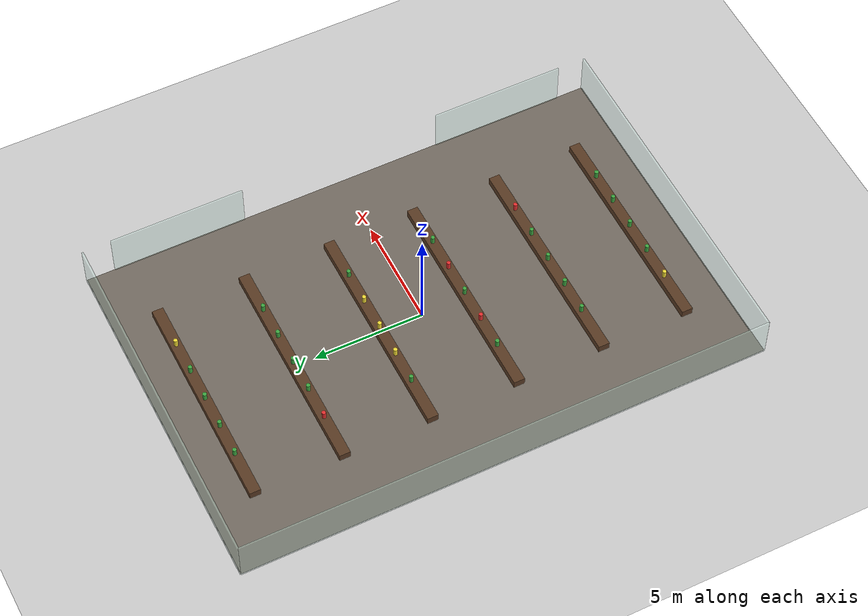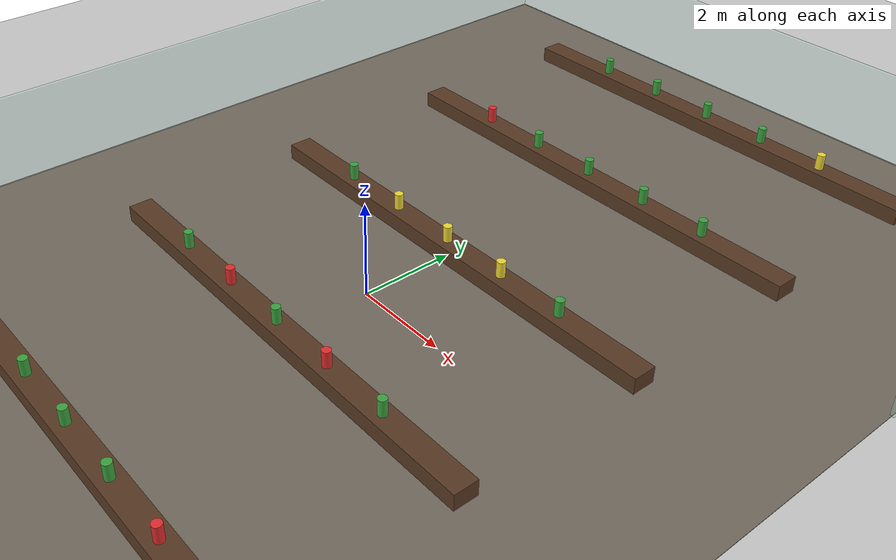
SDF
<sdf version="1.6">
  <world name="greenhouse_world_2">
    <scene>
      <ambient>0.45 0.45 0.45 1</ambient>
      <background>0.80 0.87 0.92 1</background>
      <shadows>true</shadows>
    </scene>

    <include>
      <uri>model://sun</uri>
    </include>

    <include>
      <uri>model://ground_plane</uri>
    </include>

    <physics type="ode">
      <real_time_update_rate>1000.0</real_time_update_rate>
      <max_step_size>0.001</max_step_size>
      <real_time_factor>1.0</real_time_factor>
    </physics>

    <!-- Greenhouse floor (scaled up for wider aisles) -->
    <model name="greenhouse_floor">
      <static>true</static>
      <link name="floor_link">
        <pose>0 0 0.01 0 0 0</pose>
        <collision name="floor_collision">
          <geometry>
            <box>
              <size>16 24 0.02</size>
            </box>
          </geometry>
        </collision>
        <visual name="floor_visual">
          <geometry>
            <box>
              <size>16 24 0.02</size>
            </box>
          </geometry>
          <material>
            <ambient>0.35 0.33 0.30 1</ambient>
            <diffuse>0.45 0.42 0.38 1</diffuse>
          </material>
        </visual>
      </link>
    </model>

    <!-- Greenhouse walls -->
    <model name="greenhouse_wall_left">
      <static>true</static>
      <link name="wall_left_link">
        <pose>0 12.0 1.0 0 0 0</pose>
        <collision name="wall_left_collision">
          <geometry>
            <box>
              <size>16 0.08 2.0</size>
            </box>
          </geometry>
        </collision>
        <visual name="wall_left_visual">
          <geometry>
            <box>
              <size>16 0.08 2.0</size>
            </box>
          </geometry>
          <material>
            <ambient>0.75 0.90 0.85 0.35</ambient>
            <diffuse>0.75 0.90 0.85 0.35</diffuse>
          </material>
          <transparency>0.55</transparency>
        </visual>
      </link>
    </model>

    <model name="greenhouse_wall_right">
      <static>true</static>
      <link name="wall_right_link">
        <pose>0 -12.0 1.0 0 0 0</pose>
        <collision name="wall_right_collision">
          <geometry>
            <box>
              <size>16 0.08 2.0</size>
            </box>
          </geometry>
        </collision>
        <visual name="wall_right_visual">
          <geometry>
            <box>
              <size>16 0.08 2.0</size>
            </box>
          </geometry>
          <material>
            <ambient>0.75 0.90 0.85 0.35</ambient>
            <diffuse>0.75 0.90 0.85 0.35</diffuse>
          </material>
          <transparency>0.55</transparency>
        </visual>
      </link>
    </model>

    <model name="greenhouse_wall_back">
      <static>true</static>
      <link name="wall_back_link">
        <pose>-8.0 0 1.0 0 0 0</pose>
        <collision name="wall_back_collision">
          <geometry>
            <box>
              <size>0.08 24 2.0</size>
            </box>
          </geometry>
        </collision>
        <visual name="wall_back_visual">
          <geometry>
            <box>
              <size>0.08 24 2.0</size>
            </box>
          </geometry>
          <material>
            <ambient>0.75 0.90 0.85 0.35</ambient>
            <diffuse>0.75 0.90 0.85 0.35</diffuse>
          </material>
          <transparency>0.55</transparency>
        </visual>
      </link>
    </model>

    <model name="greenhouse_wall_front_left">
      <static>true</static>
      <link name="wall_front_left_link">
        <pose>8.0 7.68 1.0 0 0 0</pose>
        <collision name="wall_front_left_collision">
          <geometry>
            <box>
              <size>0.08 6.08 2.0</size>
            </box>
          </geometry>
        </collision>
        <visual name="wall_front_left_visual">
          <geometry>
            <box>
              <size>0.08 6.08 2.0</size>
            </box>
          </geometry>
          <material>
            <ambient>0.75 0.90 0.85 0.35</ambient>
            <diffuse>0.75 0.90 0.85 0.35</diffuse>
          </material>
          <transparency>0.55</transparency>
        </visual>
      </link>
    </model>

    <model name="greenhouse_wall_front_right">
      <static>true</static>
      <link name="wall_front_right_link">
        <pose>8.0 -7.68 1.0 0 0 0</pose>
        <collision name="wall_front_right_collision">
          <geometry>
            <box>
              <size>0.08 6.08 2.0</size>
            </box>
          </geometry>
        </collision>
        <visual name="wall_front_right_visual">
          <geometry>
            <box>
              <size>0.08 6.08 2.0</size>
            </box>
          </geometry>
          <material>
            <ambient>0.75 0.90 0.85 0.35</ambient>
            <diffuse>0.75 0.90 0.85 0.35</diffuse>
          </material>
          <transparency>0.55</transparency>
        </visual>
      </link>
    </model>

    <model name="planter_row_upper_far">
      <static>true</static>
      <link name="planter_row_upper_far_link">
        <pose>0 10.0 0.18 0 0 0</pose>
        <collision name="planter_row_upper_far_collision">
          <geometry>
            <box>
              <size>10.0 0.50 0.36</size>
            </box>
          </geometry>
        </collision>
        <visual name="planter_row_upper_far_visual">
          <geometry>
            <box>
              <size>10.0 0.50 0.36</size>
            </box>
          </geometry>
          <material>
            <ambient>0.30 0.20 0.12 1</ambient>
            <diffuse>0.35 0.23 0.14 1</diffuse>
          </material>
        </visual>
      </link>
    </model>

    <model name="planter_row_upper_mid">
      <static>true</static>
      <link name="planter_row_upper_mid_link">
        <pose>0 6.0 0.18 0 0 0</pose>
        <collision name="planter_row_upper_mid_collision">
          <geometry>
            <box>
              <size>10.0 0.50 0.36</size>
            </box>
          </geometry>
        </collision>
        <visual name="planter_row_upper_mid_visual">
          <geometry>
            <box>
              <size>10.0 0.50 0.36</size>
            </box>
          </geometry>
          <material>
            <ambient>0.30 0.20 0.12 1</ambient>
            <diffuse>0.35 0.23 0.14 1</diffuse>
          </material>
        </visual>
      </link>
    </model>

    <model name="planter_row_upper_near">
      <static>true</static>
      <link name="planter_row_upper_near_link">
        <pose>0 2.0 0.18 0 0 0</pose>
        <collision name="planter_row_upper_near_collision">
          <geometry>
            <box>
              <size>10.0 0.50 0.36</size>
            </box>
          </geometry>
        </collision>
        <visual name="planter_row_upper_near_visual">
          <geometry>
            <box>
              <size>10.0 0.50 0.36</size>
            </box>
          </geometry>
          <material>
            <ambient>0.30 0.20 0.12 1</ambient>
            <diffuse>0.35 0.23 0.14 1</diffuse>
          </material>
        </visual>
      </link>
    </model>

    <model name="planter_row_lower_near">
      <static>true</static>
      <link name="planter_row_lower_near_link">
        <pose>0 -2.0 0.18 0 0 0</pose>
        <collision name="planter_row_lower_near_collision">
          <geometry>
            <box>
              <size>10.0 0.50 0.36</size>
            </box>
          </geometry>
        </collision>
        <visual name="planter_row_lower_near_visual">
          <geometry>
            <box>
              <size>10.0 0.50 0.36</size>
            </box>
          </geometry>
          <material>
            <ambient>0.30 0.20 0.12 1</ambient>
            <diffuse>0.35 0.23 0.14 1</diffuse>
          </material>
        </visual>
      </link>
    </model>

    <model name="planter_row_lower_mid">
      <static>true</static>
      <link name="planter_row_lower_mid_link">
        <pose>0 -6.0 0.18 0 0 0</pose>
        <collision name="planter_row_lower_mid_collision">
          <geometry>
            <box>
              <size>10.0 0.50 0.36</size>
            </box>
          </geometry>
        </collision>
        <visual name="planter_row_lower_mid_visual">
          <geometry>
            <box>
              <size>10.0 0.50 0.36</size>
            </box>
          </geometry>
          <material>
            <ambient>0.30 0.20 0.12 1</ambient>
            <diffuse>0.35 0.23 0.14 1</diffuse>
          </material>
        </visual>
      </link>
    </model>

    <model name="planter_row_lower_far">
      <static>true</static>
      <link name="planter_row_lower_far_link">
        <pose>0 -10.0 0.18 0 0 0</pose>
        <collision name="planter_row_lower_far_collision">
          <geometry>
            <box>
              <size>10.0 0.50 0.36</size>
            </box>
          </geometry>
        </collision>
        <visual name="planter_row_lower_far_visual">
          <geometry>
            <box>
              <size>10.0 0.50 0.36</size>
            </box>
          </geometry>
          <material>
            <ambient>0.30 0.20 0.12 1</ambient>
            <diffuse>0.35 0.23 0.14 1</diffuse>
          </material>
        </visual>
      </link>
    </model>

    <model name="plant_row1_p1">
      <static>true</static>
      <pose>-3.0 10.0 0.45 0 0 0</pose>
      <link name="plant_row1_p1_link">
        <pose>0 0 0 0 0 0</pose>
        <collision name="plant_row1_p1_collision">
          <geometry>
            <cylinder>
              <radius>0.09</radius>
              <length>0.50</length>
            </cylinder>
          </geometry>
        </collision>
        <visual name="plant_row1_p1_visual">
          <geometry>
            <cylinder>
              <radius>0.09</radius>
              <length>0.50</length>
            </cylinder>
          </geometry>
          <material>
            <ambient>0.20 0.55 0.22 1</ambient>
            <diffuse>0.24 0.65 0.25 1</diffuse>
          </material>
        </visual>
      </link>
    </model>

    <model name="plant_row1_p2">
      <static>true</static>
      <pose>-1.5 10.0 0.45 0 0 0</pose>
      <link name="plant_row1_p2_link">
        <pose>0 0 0 0 0 0</pose>
        <collision name="plant_row1_p2_collision">
          <geometry>
            <cylinder>
              <radius>0.09</radius>
              <length>0.50</length>
            </cylinder>
          </geometry>
        </collision>
        <visual name="plant_row1_p2_visual">
          <geometry>
            <cylinder>
              <radius>0.09</radius>
              <length>0.50</length>
            </cylinder>
          </geometry>
          <material>
            <ambient>0.20 0.55 0.22 1</ambient>
            <diffuse>0.24 0.65 0.25 1</diffuse>
          </material>
        </visual>
      </link>
    </model>

    <model name="plant_row1_p3">
      <static>true</static>
      <pose>0.0 10.0 0.45 0 0 0</pose>
      <link name="plant_row1_p3_link">
        <pose>0 0 0 0 0 0</pose>
        <collision name="plant_row1_p3_collision">
          <geometry>
            <cylinder>
              <radius>0.09</radius>
              <length>0.50</length>
            </cylinder>
          </geometry>
        </collision>
        <visual name="plant_row1_p3_visual">
          <geometry>
            <cylinder>
              <radius>0.09</radius>
              <length>0.50</length>
            </cylinder>
          </geometry>
          <material>
            <ambient>0.20 0.55 0.22 1</ambient>
            <diffuse>0.24 0.65 0.25 1</diffuse>
          </material>
        </visual>
      </link>
    </model>

    <model name="plant_row1_p4">
      <static>true</static>
      <pose>1.5 10.0 0.45 0 0 0</pose>
      <link name="plant_row1_p4_link">
        <pose>0 0 0 0 0 0</pose>
        <collision name="plant_row1_p4_collision">
          <geometry>
            <cylinder>
              <radius>0.09</radius>
              <length>0.50</length>
            </cylinder>
          </geometry>
        </collision>
        <visual name="plant_row1_p4_visual">
          <geometry>
            <cylinder>
              <radius>0.09</radius>
              <length>0.50</length>
            </cylinder>
          </geometry>
          <material>
            <ambient>0.20 0.55 0.22 1</ambient>
            <diffuse>0.24 0.65 0.25 1</diffuse>
          </material>
        </visual>
      </link>
    </model>

    <model name="plant_row1_p5">
      <static>true</static>
      <pose>3.0 10.0 0.45 0 0 0</pose>
      <link name="plant_row1_p5_link">
        <pose>0 0 0 0 0 0</pose>
        <collision name="plant_row1_p5_collision">
          <geometry>
            <cylinder>
              <radius>0.09</radius>
              <length>0.50</length>
            </cylinder>
          </geometry>
        </collision>
        <visual name="plant_row1_p5_visual">
          <geometry>
            <cylinder>
              <radius>0.09</radius>
              <length>0.50</length>
            </cylinder>
          </geometry>
          <material>
            <ambient>0.78 0.72 0.14 1</ambient>
            <diffuse>0.95 0.86 0.20 1</diffuse>
          </material>
        </visual>
      </link>
    </model>

    <model name="plant_row2_p1">
      <static>true</static>
      <pose>-3.0 6.0 0.45 0 0 0</pose>
      <link name="plant_row2_p1_link">
        <pose>0 0 0 0 0 0</pose>
        <collision name="plant_row2_p1_collision">
          <geometry>
            <cylinder>
              <radius>0.09</radius>
              <length>0.50</length>
            </cylinder>
          </geometry>
        </collision>
        <visual name="plant_row2_p1_visual">
          <geometry>
            <cylinder>
              <radius>0.09</radius>
              <length>0.50</length>
            </cylinder>
          </geometry>
          <material>
            <ambient>0.70 0.12 0.12 1</ambient>
            <diffuse>0.90 0.18 0.18 1</diffuse>
          </material>
        </visual>
      </link>
    </model>

    <model name="plant_row2_p2">
      <static>true</static>
      <pose>-1.5 6.0 0.45 0 0 0</pose>
      <link name="plant_row2_p2_link">
        <pose>0 0 0 0 0 0</pose>
        <collision name="plant_row2_p2_collision">
          <geometry>
            <cylinder>
              <radius>0.09</radius>
              <length>0.50</length>
            </cylinder>
          </geometry>
        </collision>
        <visual name="plant_row2_p2_visual">
          <geometry>
            <cylinder>
              <radius>0.09</radius>
              <length>0.50</length>
            </cylinder>
          </geometry>
          <material>
            <ambient>0.20 0.55 0.22 1</ambient>
            <diffuse>0.24 0.65 0.25 1</diffuse>
          </material>
        </visual>
      </link>
    </model>

    <model name="plant_row2_p3">
      <static>true</static>
      <pose>0.0 6.0 0.45 0 0 0</pose>
      <link name="plant_row2_p3_link">
        <pose>0 0 0 0 0 0</pose>
        <collision name="plant_row2_p3_collision">
          <geometry>
            <cylinder>
              <radius>0.09</radius>
              <length>0.50</length>
            </cylinder>
          </geometry>
        </collision>
        <visual name="plant_row2_p3_visual">
          <geometry>
            <cylinder>
              <radius>0.09</radius>
              <length>0.50</length>
            </cylinder>
          </geometry>
          <material>
            <ambient>0.20 0.55 0.22 1</ambient>
            <diffuse>0.24 0.65 0.25 1</diffuse>
          </material>
        </visual>
      </link>
    </model>

    <model name="plant_row2_p4">
      <static>true</static>
      <pose>1.5 6.0 0.45 0 0 0</pose>
      <link name="plant_row2_p4_link">
        <pose>0 0 0 0 0 0</pose>
        <collision name="plant_row2_p4_collision">
          <geometry>
            <cylinder>
              <radius>0.09</radius>
              <length>0.50</length>
            </cylinder>
          </geometry>
        </collision>
        <visual name="plant_row2_p4_visual">
          <geometry>
            <cylinder>
              <radius>0.09</radius>
              <length>0.50</length>
            </cylinder>
          </geometry>
          <material>
            <ambient>0.20 0.55 0.22 1</ambient>
            <diffuse>0.24 0.65 0.25 1</diffuse>
          </material>
        </visual>
      </link>
    </model>

    <model name="plant_row2_p5">
      <static>true</static>
      <pose>3.0 6.0 0.45 0 0 0</pose>
      <link name="plant_row2_p5_link">
        <pose>0 0 0 0 0 0</pose>
        <collision name="plant_row2_p5_collision">
          <geometry>
            <cylinder>
              <radius>0.09</radius>
              <length>0.50</length>
            </cylinder>
          </geometry>
        </collision>
        <visual name="plant_row2_p5_visual">
          <geometry>
            <cylinder>
              <radius>0.09</radius>
              <length>0.50</length>
            </cylinder>
          </geometry>
          <material>
            <ambient>0.20 0.55 0.22 1</ambient>
            <diffuse>0.24 0.65 0.25 1</diffuse>
          </material>
        </visual>
      </link>
    </model>

    <model name="plant_row3_p1">
      <static>true</static>
      <pose>-3.0 2.0 0.45 0 0 0</pose>
      <link name="plant_row3_p1_link">
        <pose>0 0 0 0 0 0</pose>
        <collision name="plant_row3_p1_collision">
          <geometry>
            <cylinder>
              <radius>0.09</radius>
              <length>0.50</length>
            </cylinder>
          </geometry>
        </collision>
        <visual name="plant_row3_p1_visual">
          <geometry>
            <cylinder>
              <radius>0.09</radius>
              <length>0.50</length>
            </cylinder>
          </geometry>
          <material>
            <ambient>0.20 0.55 0.22 1</ambient>
            <diffuse>0.24 0.65 0.25 1</diffuse>
          </material>
        </visual>
      </link>
    </model>

    <model name="plant_row3_p2">
      <static>true</static>
      <pose>-1.5 2.0 0.45 0 0 0</pose>
      <link name="plant_row3_p2_link">
        <pose>0 0 0 0 0 0</pose>
        <collision name="plant_row3_p2_collision">
          <geometry>
            <cylinder>
              <radius>0.09</radius>
              <length>0.50</length>
            </cylinder>
          </geometry>
        </collision>
        <visual name="plant_row3_p2_visual">
          <geometry>
            <cylinder>
              <radius>0.09</radius>
              <length>0.50</length>
            </cylinder>
          </geometry>
          <material>
            <ambient>0.78 0.72 0.14 1</ambient>
            <diffuse>0.95 0.86 0.20 1</diffuse>
          </material>
        </visual>
      </link>
    </model>

    <model name="plant_row3_p3">
      <static>true</static>
      <pose>0.0 2.0 0.45 0 0 0</pose>
      <link name="plant_row3_p3_link">
        <pose>0 0 0 0 0 0</pose>
        <collision name="plant_row3_p3_collision">
          <geometry>
            <cylinder>
              <radius>0.09</radius>
              <length>0.50</length>
            </cylinder>
          </geometry>
        </collision>
        <visual name="plant_row3_p3_visual">
          <geometry>
            <cylinder>
              <radius>0.09</radius>
              <length>0.50</length>
            </cylinder>
          </geometry>
          <material>
            <ambient>0.78 0.72 0.14 1</ambient>
            <diffuse>0.95 0.86 0.20 1</diffuse>
          </material>
        </visual>
      </link>
    </model>

    <model name="plant_row3_p4">
      <static>true</static>
      <pose>1.5 2.0 0.45 0 0 0</pose>
      <link name="plant_row3_p4_link">
        <pose>0 0 0 0 0 0</pose>
        <collision name="plant_row3_p4_collision">
          <geometry>
            <cylinder>
              <radius>0.09</radius>
              <length>0.50</length>
            </cylinder>
          </geometry>
        </collision>
        <visual name="plant_row3_p4_visual">
          <geometry>
            <cylinder>
              <radius>0.09</radius>
              <length>0.50</length>
            </cylinder>
          </geometry>
          <material>
            <ambient>0.78 0.72 0.14 1</ambient>
            <diffuse>0.95 0.86 0.20 1</diffuse>
          </material>
        </visual>
      </link>
    </model>

    <model name="plant_row3_p5">
      <static>true</static>
      <pose>3.0 2.0 0.45 0 0 0</pose>
      <link name="plant_row3_p5_link">
        <pose>0 0 0 0 0 0</pose>
        <collision name="plant_row3_p5_collision">
          <geometry>
            <cylinder>
              <radius>0.09</radius>
              <length>0.50</length>
            </cylinder>
          </geometry>
        </collision>
        <visual name="plant_row3_p5_visual">
          <geometry>
            <cylinder>
              <radius>0.09</radius>
              <length>0.50</length>
            </cylinder>
          </geometry>
          <material>
            <ambient>0.20 0.55 0.22 1</ambient>
            <diffuse>0.24 0.65 0.25 1</diffuse>
          </material>
        </visual>
      </link>
    </model>

    <model name="plant_row4_p1">
      <static>true</static>
      <pose>-3.0 -2.0 0.45 0 0 0</pose>
      <link name="plant_row4_p1_link">
        <pose>0 0 0 0 0 0</pose>
        <collision name="plant_row4_p1_collision">
          <geometry>
            <cylinder>
              <radius>0.09</radius>
              <length>0.50</length>
            </cylinder>
          </geometry>
        </collision>
        <visual name="plant_row4_p1_visual">
          <geometry>
            <cylinder>
              <radius>0.09</radius>
              <length>0.50</length>
            </cylinder>
          </geometry>
          <material>
            <ambient>0.20 0.55 0.22 1</ambient>
            <diffuse>0.24 0.65 0.25 1</diffuse>
          </material>
        </visual>
      </link>
    </model>

    <model name="plant_row4_p2">
      <static>true</static>
      <pose>-1.5 -2.0 0.45 0 0 0</pose>
      <link name="plant_row4_p2_link">
        <pose>0 0 0 0 0 0</pose>
        <collision name="plant_row4_p2_collision">
          <geometry>
            <cylinder>
              <radius>0.09</radius>
              <length>0.50</length>
            </cylinder>
          </geometry>
        </collision>
        <visual name="plant_row4_p2_visual">
          <geometry>
            <cylinder>
              <radius>0.09</radius>
              <length>0.50</length>
            </cylinder>
          </geometry>
          <material>
            <ambient>0.70 0.12 0.12 1</ambient>
            <diffuse>0.90 0.18 0.18 1</diffuse>
          </material>
        </visual>
      </link>
    </model>

    <model name="plant_row4_p3">
      <static>true</static>
      <pose>0.0 -2.0 0.45 0 0 0</pose>
      <link name="plant_row4_p3_link">
        <pose>0 0 0 0 0 0</pose>
        <collision name="plant_row4_p3_collision">
          <geometry>
            <cylinder>
              <radius>0.09</radius>
              <length>0.50</length>
            </cylinder>
          </geometry>
        </collision>
        <visual name="plant_row4_p3_visual">
          <geometry>
            <cylinder>
              <radius>0.09</radius>
              <length>0.50</length>
            </cylinder>
          </geometry>
          <material>
            <ambient>0.20 0.55 0.22 1</ambient>
            <diffuse>0.24 0.65 0.25 1</diffuse>
          </material>
        </visual>
      </link>
    </model>

    <model name="plant_row4_p4">
      <static>true</static>
      <pose>1.5 -2.0 0.45 0 0 0</pose>
      <link name="plant_row4_p4_link">
        <pose>0 0 0 0 0 0</pose>
        <collision name="plant_row4_p4_collision">
          <geometry>
            <cylinder>
              <radius>0.09</radius>
              <length>0.50</length>
            </cylinder>
          </geometry>
        </collision>
        <visual name="plant_row4_p4_visual">
          <geometry>
            <cylinder>
              <radius>0.09</radius>
              <length>0.50</length>
            </cylinder>
          </geometry>
          <material>
            <ambient>0.70 0.12 0.12 1</ambient>
            <diffuse>0.90 0.18 0.18 1</diffuse>
          </material>
        </visual>
      </link>
    </model>

    <model name="plant_row4_p5">
      <static>true</static>
      <pose>3.0 -2.0 0.45 0 0 0</pose>
      <link name="plant_row4_p5_link">
        <pose>0 0 0 0 0 0</pose>
        <collision name="plant_row4_p5_collision">
          <geometry>
            <cylinder>
              <radius>0.09</radius>
              <length>0.50</length>
            </cylinder>
          </geometry>
        </collision>
        <visual name="plant_row4_p5_visual">
          <geometry>
            <cylinder>
              <radius>0.09</radius>
              <length>0.50</length>
            </cylinder>
          </geometry>
          <material>
            <ambient>0.20 0.55 0.22 1</ambient>
            <diffuse>0.24 0.65 0.25 1</diffuse>
          </material>
        </visual>
      </link>
    </model>

    <model name="plant_row5_p1">
      <static>true</static>
      <pose>-3.0 -6.0 0.45 0 0 0</pose>
      <link name="plant_row5_p1_link">
        <pose>0 0 0 0 0 0</pose>
        <collision name="plant_row5_p1_collision">
          <geometry>
            <cylinder>
              <radius>0.09</radius>
              <length>0.50</length>
            </cylinder>
          </geometry>
        </collision>
        <visual name="plant_row5_p1_visual">
          <geometry>
            <cylinder>
              <radius>0.09</radius>
              <length>0.50</length>
            </cylinder>
          </geometry>
          <material>
            <ambient>0.20 0.55 0.22 1</ambient>
            <diffuse>0.24 0.65 0.25 1</diffuse>
          </material>
        </visual>
      </link>
    </model>

    <model name="plant_row5_p2">
      <static>true</static>
      <pose>-1.5 -6.0 0.45 0 0 0</pose>
      <link name="plant_row5_p2_link">
        <pose>0 0 0 0 0 0</pose>
        <collision name="plant_row5_p2_collision">
          <geometry>
            <cylinder>
              <radius>0.09</radius>
              <length>0.50</length>
            </cylinder>
          </geometry>
        </collision>
        <visual name="plant_row5_p2_visual">
          <geometry>
            <cylinder>
              <radius>0.09</radius>
              <length>0.50</length>
            </cylinder>
          </geometry>
          <material>
            <ambient>0.20 0.55 0.22 1</ambient>
            <diffuse>0.24 0.65 0.25 1</diffuse>
          </material>
        </visual>
      </link>
    </model>

    <model name="plant_row5_p3">
      <static>true</static>
      <pose>0.0 -6.0 0.45 0 0 0</pose>
      <link name="plant_row5_p3_link">
        <pose>0 0 0 0 0 0</pose>
        <collision name="plant_row5_p3_collision">
          <geometry>
            <cylinder>
              <radius>0.09</radius>
              <length>0.50</length>
            </cylinder>
          </geometry>
        </collision>
        <visual name="plant_row5_p3_visual">
          <geometry>
            <cylinder>
              <radius>0.09</radius>
              <length>0.50</length>
            </cylinder>
          </geometry>
          <material>
            <ambient>0.20 0.55 0.22 1</ambient>
            <diffuse>0.24 0.65 0.25 1</diffuse>
          </material>
        </visual>
      </link>
    </model>

    <model name="plant_row5_p4">
      <static>true</static>
      <pose>1.5 -6.0 0.45 0 0 0</pose>
      <link name="plant_row5_p4_link">
        <pose>0 0 0 0 0 0</pose>
        <collision name="plant_row5_p4_collision">
          <geometry>
            <cylinder>
              <radius>0.09</radius>
              <length>0.50</length>
            </cylinder>
          </geometry>
        </collision>
        <visual name="plant_row5_p4_visual">
          <geometry>
            <cylinder>
              <radius>0.09</radius>
              <length>0.50</length>
            </cylinder>
          </geometry>
          <material>
            <ambient>0.20 0.55 0.22 1</ambient>
            <diffuse>0.24 0.65 0.25 1</diffuse>
          </material>
        </visual>
      </link>
    </model>

    <model name="plant_row5_p5">
      <static>true</static>
      <pose>3.0 -6.0 0.45 0 0 0</pose>
      <link name="plant_row5_p5_link">
        <pose>0 0 0 0 0 0</pose>
        <collision name="plant_row5_p5_collision">
          <geometry>
            <cylinder>
              <radius>0.09</radius>
              <length>0.50</length>
            </cylinder>
          </geometry>
        </collision>
        <visual name="plant_row5_p5_visual">
          <geometry>
            <cylinder>
              <radius>0.09</radius>
              <length>0.50</length>
            </cylinder>
          </geometry>
          <material>
            <ambient>0.70 0.12 0.12 1</ambient>
            <diffuse>0.90 0.18 0.18 1</diffuse>
          </material>
        </visual>
      </link>
    </model>

    <model name="plant_row6_p1">
      <static>true</static>
      <pose>-3.0 -10.0 0.45 0 0 0</pose>
      <link name="plant_row6_p1_link">
        <pose>0 0 0 0 0 0</pose>
        <collision name="plant_row6_p1_collision">
          <geometry>
            <cylinder>
              <radius>0.09</radius>
              <length>0.50</length>
            </cylinder>
          </geometry>
        </collision>
        <visual name="plant_row6_p1_visual">
          <geometry>
            <cylinder>
              <radius>0.09</radius>
              <length>0.50</length>
            </cylinder>
          </geometry>
          <material>
            <ambient>0.78 0.72 0.14 1</ambient>
            <diffuse>0.95 0.86 0.20 1</diffuse>
          </material>
        </visual>
      </link>
    </model>

    <model name="plant_row6_p2">
      <static>true</static>
      <pose>-1.5 -10.0 0.45 0 0 0</pose>
      <link name="plant_row6_p2_link">
        <pose>0 0 0 0 0 0</pose>
        <collision name="plant_row6_p2_collision">
          <geometry>
            <cylinder>
              <radius>0.09</radius>
              <length>0.50</length>
            </cylinder>
          </geometry>
        </collision>
        <visual name="plant_row6_p2_visual">
          <geometry>
            <cylinder>
              <radius>0.09</radius>
              <length>0.50</length>
            </cylinder>
          </geometry>
          <material>
            <ambient>0.20 0.55 0.22 1</ambient>
            <diffuse>0.24 0.65 0.25 1</diffuse>
          </material>
        </visual>
      </link>
    </model>

    <model name="plant_row6_p3">
      <static>true</static>
      <pose>0.0 -10.0 0.45 0 0 0</pose>
      <link name="plant_row6_p3_link">
        <pose>0 0 0 0 0 0</pose>
        <collision name="plant_row6_p3_collision">
          <geometry>
            <cylinder>
              <radius>0.09</radius>
              <length>0.50</length>
            </cylinder>
          </geometry>
        </collision>
        <visual name="plant_row6_p3_visual">
          <geometry>
            <cylinder>
              <radius>0.09</radius>
              <length>0.50</length>
            </cylinder>
          </geometry>
          <material>
            <ambient>0.20 0.55 0.22 1</ambient>
            <diffuse>0.24 0.65 0.25 1</diffuse>
          </material>
        </visual>
      </link>
    </model>

    <model name="plant_row6_p4">
      <static>true</static>
      <pose>1.5 -10.0 0.45 0 0 0</pose>
      <link name="plant_row6_p4_link">
        <pose>0 0 0 0 0 0</pose>
        <collision name="plant_row6_p4_collision">
          <geometry>
            <cylinder>
              <radius>0.09</radius>
              <length>0.50</length>
            </cylinder>
          </geometry>
        </collision>
        <visual name="plant_row6_p4_visual">
          <geometry>
            <cylinder>
              <radius>0.09</radius>
              <length>0.50</length>
            </cylinder>
          </geometry>
          <material>
            <ambient>0.20 0.55 0.22 1</ambient>
            <diffuse>0.24 0.65 0.25 1</diffuse>
          </material>
        </visual>
      </link>
    </model>

    <model name="plant_row6_p5">
      <static>true</static>
      <pose>3.0 -10.0 0.45 0 0 0</pose>
      <link name="plant_row6_p5_link">
        <pose>0 0 0 0 0 0</pose>
        <collision name="plant_row6_p5_collision">
          <geometry>
            <cylinder>
              <radius>0.09</radius>
              <length>0.50</length>
            </cylinder>
          </geometry>
        </collision>
        <visual name="plant_row6_p5_visual">
          <geometry>
            <cylinder>
              <radius>0.09</radius>
              <length>0.50</length>
            </cylinder>
          </geometry>
          <material>
            <ambient>0.20 0.55 0.22 1</ambient>
            <diffuse>0.24 0.65 0.25 1</diffuse>
          </material>
        </visual>
      </link>
    </model>
  </world>
</sdf>
